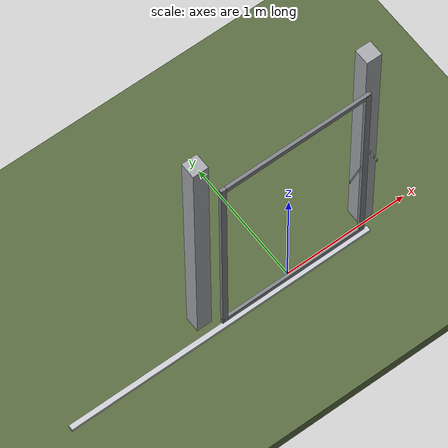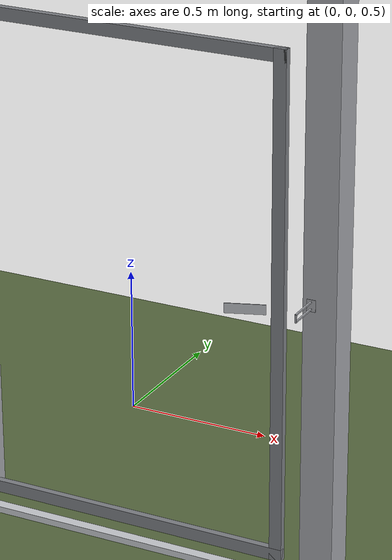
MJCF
<?xml version="1.0" ?>
<mujoco model="db0064_gate_sliding_minimal">
  <compiler angle="radian" meshdir="../../hardware" texturedir="../../textures" autolimits="true" inertiafromgeom="false"/>
  <option timestep="0.002" integrator="implicitfast" cone="elliptic" impratio="10" noslip_iterations="3">
    <flag multiccd="enable"/>
  </option>
  <size memory="16M"/>
  <default>
    <geom condim="4" solref="0.005 1" solimp="0.95 0.99 0.001"/>
    <joint solreflimit="0.005 1" solimplimit="0.95 0.99 0.001"/>
    <tendon solreflimit="0.005 1"/>
    <equality solref="0.002 1"/>
  </default>
  <visual>
    <headlight ambient="0.4 0.4 0.4" diffuse="0.7 0.7 0.7" specular="0.2 0.2 0.2"/>
    <quality shadowsize="4096"/>
    <map znear="0.01" zfar="60"/>
  </visual>
  <asset>
    <material name="mat_floor" rgba="0.35 0.42 0.25 1" specular="0.2" shininess="0.15" reflectance="0"/>
    <material name="mat_wall" rgba="0.78 0.76 0.7 1" specular="0.2" shininess="0.1" reflectance="0"/>
    <material name="mat_frame" rgba="0.65 0.66 0.68 1" specular="0.74" shininess="0.5" reflectance="0.36"/>
    <material name="mat_track" rgba="0.8 0.81 0.83 1" specular="0.8" shininess="0.6" reflectance="0.4"/>
    <material name="mat_leaf" rgba="0.5 0.51 0.53 1" specular="0.23" shininess="0.36" reflectance="0.02"/>
    <material name="mat_roller" rgba="0.65 0.66 0.68 1" specular="0.74" shininess="0.5" reflectance="0.36"/>
    <material name="mat_op_steel_galvanized" rgba="0.65 0.66 0.68 1" specular="0.74" shininess="0.5" reflectance="0.36"/>
    <material name="mat_padlock" rgba="0.85 0.66 0.3 1" specular="0.8" shininess="0.75" reflectance="0.4"/>
    <material name="mat_hook" rgba="0.75 0.76 0.77 1" specular="0.8" shininess="0.65" reflectance="0.4"/>
    <texture name="skybox" type="skybox" builtin="gradient" rgb1="0.6 0.7 0.85" rgb2="0.9 0.92 0.95" width="256" height="256"/>
  </asset>
  <worldbody>
    <light name="sun" pos="1.5 -2.5 4" dir="-0.3 0.5 -0.8" directional="true" diffuse="0.8 0.8 0.8" specular="0.3 0.3 0.3" castshadow="true"/>
    <light name="fill" pos="-1.5 2.5 3" dir="0.3 -0.5 -0.7" directional="true" diffuse="0.35 0.35 0.4" castshadow="false"/>
    <camera name="robot_view" pos="0 -2.359375 1.585625" xyaxes="1 0 0 0 0.26963 0.962964" fovy="52"/>
    <camera name="far_view" pos="0 2.359375 1.585625" xyaxes="-1 0 0 0 -0.26963 0.962964" fovy="52"/>
    <camera name="iso" pos="1.793125 -1.981875 1.963125" xyaxes="0.741536 0.670913 0 -0.242917 0.268487 0.932151" fovy="46"/>
    <camera name="detail_handle" pos="0.907 -1.1885 1.35" xyaxes="0.975133 0.221621 0 -0.065674 0.288965 0.955084" fovy="38"/>
    <geom name="floor" type="box" size="6 6 0.05" pos="0 0 -0.05" material="mat_floor" group="0" contype="1" conaffinity="1" friction="0.8 0.005 0.0001" density="2400"/>
    <geom name="post_l" type="box" size="0.06 0.06 1.05" pos="-0.685 0.08 1.05" material="mat_frame" group="0" contype="1" conaffinity="1" friction="0.6 0.005 0.0001" density="7850"/>
    <geom name="post_r" type="box" size="0.06 0.06 1.05" pos="0.685 0.08 1.05" material="mat_frame" group="0" contype="1" conaffinity="1" friction="0.6 0.005 0.0001" density="7850"/>
    <geom name="gate_rail" type="box" size="1.25 0.02 0.012" pos="-0.6 -0.06 0.012" material="mat_track" group="0" contype="1" conaffinity="1" friction="0.6 0.005 0.0001" density="2700"/>
    <geom name="leaf_staple_leg_n" type="box" size="0.003 0.0025 0.06025" pos="0.655 -0.04025 0.9875" quat="0.707107 0.707107 0 0" material="mat_op_steel_galvanized" group="0" contype="1" conaffinity="1" friction="0.6 0.005 0.0001" density="7800"/>
    <geom name="leaf_staple_leg_p" type="box" size="0.003 0.0025 0.06025" pos="0.655 -0.04025 1.0125" quat="0.707107 0.707107 0 0" material="mat_op_steel_galvanized" group="0" contype="1" conaffinity="1" friction="0.6 0.005 0.0001" density="7800"/>
    <geom name="leaf_staple_bridge" type="box" size="0.003 0.015 0.0025" pos="0.655 -0.098 1" quat="0.707107 0.707107 0 0" material="mat_op_steel_galvanized" group="0" contype="1" conaffinity="1" friction="0.6 0.005 0.0001" density="7800"/>
    <geom name="leaf_staple_base" type="box" size="0.016 0.021 0.001" pos="0.655 0.019 1" quat="0.707107 0.707107 0 0" material="mat_op_steel_galvanized" group="1" contype="0" conaffinity="0" density="7800"/>
    <site name="approach_point" pos="0 -1.5 0" quat="1 0 0 0" size="0.05" rgba="0.2 0.9 0.2 0.5" group="4"/>
    <site name="goal_point" pos="0 1.5 0" quat="1 0 0 0" size="0.05" rgba="0.2 0.9 0.2 0.5" group="4"/>
    <site name="door_plane_center" pos="0 0 0.925" quat="1 0 0 0" size="0.02" rgba="0.2 0.9 0.2 0.5" group="4"/>
    <body name="leaf" pos="0 -0.06 0">
      <inertial pos="0 0 0.98" mass="61.412323" quat="-0.5 0.5 0.5 0.5" diaginertia="7.373552818 16.585892026 23.953047727"/>
      <joint name="leaf_slide" type="slide" axis="-1 0 0" limited="true" range="0 1.2" damping="5.0773" frictionloss="19.615703" armature="0.5"/>
      <geom name="leaf_slab_col" type="box" size="0.6 0.0125 0.9" pos="0 0 0.98" material="mat_leaf" group="3" contype="1" conaffinity="1" rgba="0.8 0.3 0.3 0.25" friction="0.45 0.005 0.0001" density="1"/>
      <geom name="leaf_rail_b" type="box" size="0.6 0.0125 0.0225" pos="0 0 0.1025" material="mat_leaf" group="1" contype="0" conaffinity="0" density="1"/>
      <geom name="leaf_rail_t" type="box" size="0.6 0.0125 0.0225" pos="0 0 1.8575" material="mat_leaf" group="1" contype="0" conaffinity="0" density="1"/>
      <geom name="leaf_stile_h" type="box" size="0.0225 0.0125 0.9" pos="-0.5775 0 0.98" material="mat_leaf" group="1" contype="0" conaffinity="0" density="1"/>
      <geom name="leaf_stile_l" type="box" size="0.0225 0.0125 0.9" pos="0.5775 0 0.98" material="mat_leaf" group="1" contype="0" conaffinity="0" density="1"/>
      <site name="leaf_edge_mid" pos="0.6 0 0.98" quat="1 0 0 0" size="0.02" rgba="0.2 0.9 0.2 0.5" group="4"/>
      <body name="leaf_hasp" pos="0.54 -0.0185 1">
        <inertial pos="-0.065045 -0.021533 0" mass="0.112203" quat="0.696818 -0.696818 -0.120185 0.120185" diaginertia="0.000011538 0.000175579 0.000186949"/>
        <joint name="leaf_hasp_hinge" type="hinge" axis="0 0 -1" limited="true" range="0 2.9" damping="0.02" frictionloss="0.05" armature="0.005" ref="2.8"/>
        <geom name="leaf_hasp_strap" type="box" size="0.0685 0.0175 0.0015" pos="-0.065045 -0.021533 0" quat="0.120185 0.120185 -0.696818 -0.696818" material="mat_op_steel_galvanized" group="0" contype="1" conaffinity="1" friction="0.6 0.005 0.0001" density="7800"/>
        <site name="leaf_hasp_grip" pos="-0.11359 -0.029771 0" quat="0.169967 0 0 -0.98545" size="0.01" rgba="0.2 0.9 0.2 0.5" group="4"/>
      </body>
    </body>
  </worldbody>
  <sensor>
    <jointpos name="leaf_slide_pos" joint="leaf_slide"/>
    <jointvel name="leaf_slide_vel" joint="leaf_slide"/>
    <jointpos name="leaf_hasp_hinge_pos" joint="leaf_hasp_hinge"/>
    <jointvel name="leaf_hasp_hinge_vel" joint="leaf_hasp_hinge"/>
  </sensor>
</mujoco>
